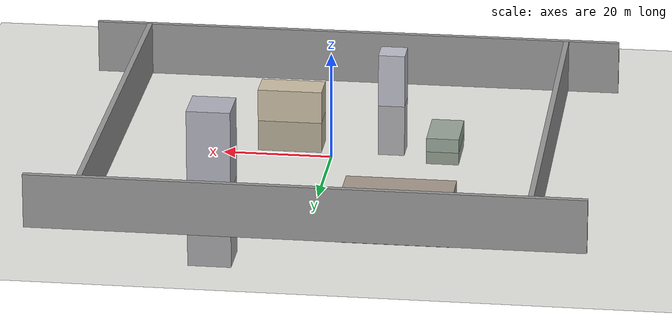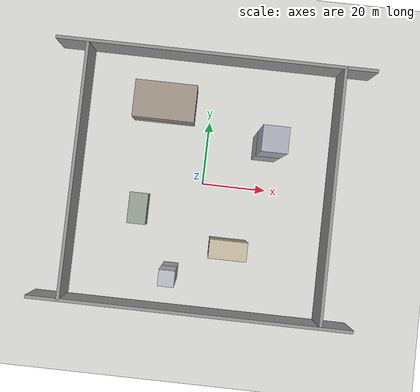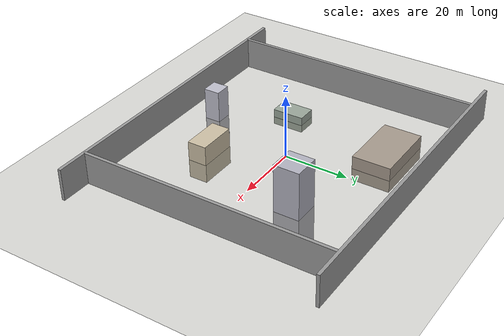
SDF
<?xml version="1.0" encoding="UTF-8"?>
<sdf version='1.9'>
  <world name="sentinel_urban">
    <physics type="ode">
      <max_step_size>0.004</max_step_size>
      <real_time_factor>1.0</real_time_factor>
      <real_time_update_rate>250</real_time_update_rate>
    </physics>
    <gravity>0 0 -9.8</gravity>
    <magnetic_field>6e-06 2.3e-05 -4.2e-05</magnetic_field>
    <atmosphere type="adiabatic"/>

    <!-- No world-level plugins — PX4 loads them via server.config at runtime -->

    <scene>
      <grid>false</grid>
      <ambient>0.4 0.4 0.4 1</ambient>
      <background>0.6 0.7 0.9 1</background>
      <shadows>true</shadows>
    </scene>

    <!-- Ground plane -->
    <model name="ground_plane">
      <static>true</static>
      <link name="link">
        <collision name="collision">
          <geometry><plane><normal>0 0 1</normal><size>1 1</size></plane></geometry>
          <surface><friction><ode/></friction><bounce/><contact/></surface>
        </collision>
        <visual name="visual">
          <geometry><plane><normal>0 0 1</normal><size>500 500</size></plane></geometry>
          <material>
            <ambient>0.5 0.5 0.45 1</ambient>
            <diffuse>0.5 0.5 0.45 1</diffuse>
            <specular>0.3 0.3 0.3 1</specular>
          </material>
        </visual>
        <pose>0 0 0 0 0 0</pose>
        <inertial>
          <pose>0 0 0 0 0 0</pose>
          <mass>1</mass>
          <inertia>
            <ixx>1</ixx><ixy>0</ixy><ixz>0</ixz>
            <iyy>1</iyy><iyz>0</iyz><izz>1</izz>
          </inertia>
        </inertial>
      </link>
      <pose>0 0 0 0 0 0</pose>
      <self_collide>false</self_collide>
    </model>

    <!-- Building 1: Tall office tower -->
    <model name="building_1">
      <static>true</static>
      <pose>20 15 0 0 0 0</pose>
      <link name="link">
        <collision name="collision">
          <geometry><box><size>8 8 30</size></box></geometry>
        </collision>
        <visual name="visual">
          <geometry><box><size>8 8 30</size></box></geometry>
          <material>
            <ambient>0.6 0.6 0.65 1</ambient>
            <diffuse>0.7 0.7 0.75 1</diffuse>
            <specular>0.9 0.9 0.95 1</specular>
          </material>
        </visual>
      </link>
    </model>

    <!-- Building 2: Wide warehouse -->
    <model name="building_2">
      <static>true</static>
      <pose>-15 25 0 0 0 0</pose>
      <link name="link">
        <collision name="collision">
          <geometry><box><size>20 12 8</size></box></geometry>
        </collision>
        <visual name="visual">
          <geometry><box><size>20 12 8</size></box></geometry>
          <material>
            <ambient>0.55 0.5 0.45 1</ambient>
            <diffuse>0.65 0.6 0.55 1</diffuse>
            <specular>0.3 0.3 0.3 1</specular>
          </material>
        </visual>
      </link>
    </model>

    <!-- Building 3: Residential block -->
    <model name="building_3">
      <static>true</static>
      <pose>10 -20 0 0 0 0</pose>
      <link name="link">
        <collision name="collision">
          <geometry><box><size>12 6 12</size></box></geometry>
        </collision>
        <visual name="visual">
          <geometry><box><size>12 6 12</size></box></geometry>
          <material>
            <ambient>0.7 0.65 0.55 1</ambient>
            <diffuse>0.8 0.75 0.65 1</diffuse>
            <specular>0.2 0.2 0.2 1</specular>
          </material>
        </visual>
      </link>
    </model>

    <!-- Building 4: Low structure -->
    <model name="building_4">
      <static>true</static>
      <pose>-20 -10 0 0 0 0</pose>
      <link name="link">
        <collision name="collision">
          <geometry><box><size>6 10 5</size></box></geometry>
        </collision>
        <visual name="visual">
          <geometry><box><size>6 10 5</size></box></geometry>
          <material>
            <ambient>0.5 0.55 0.5 1</ambient>
            <diffuse>0.6 0.65 0.6 1</diffuse>
            <specular>0.4 0.4 0.4 1</specular>
          </material>
        </visual>
      </link>
    </model>

    <!-- Building 5: Tower -->
    <model name="building_5">
      <static>true</static>
      <pose>-8 -30 0 0 0 0</pose>
      <link name="link">
        <collision name="collision">
          <geometry><box><size>5 5 20</size></box></geometry>
        </collision>
        <visual name="visual">
          <geometry><box><size>5 5 20</size></box></geometry>
          <material>
            <ambient>0.65 0.65 0.7 1</ambient>
            <diffuse>0.75 0.75 0.8 1</diffuse>
            <specular>0.8 0.8 0.85 1</specular>
          </material>
        </visual>
      </link>
    </model>

    <!-- Perimeter walls for enclosed test area -->
    <model name="wall_north">
      <static>true</static>
      <pose>0 40 5 0 0 0</pose>
      <link name="link">
        <collision name="collision">
          <geometry><box><size>100 1 10</size></box></geometry>
        </collision>
        <visual name="visual">
          <geometry><box><size>100 1 10</size></box></geometry>
          <material>
            <ambient>0.5 0.5 0.5 1</ambient>
            <diffuse>0.6 0.6 0.6 1</diffuse>
          </material>
        </visual>
      </link>
    </model>
    <model name="wall_south">
      <static>true</static>
      <pose>0 -40 5 0 0 0</pose>
      <link name="link">
        <collision name="collision">
          <geometry><box><size>100 1 10</size></box></geometry>
        </collision>
        <visual name="visual">
          <geometry><box><size>100 1 10</size></box></geometry>
          <material>
            <ambient>0.5 0.5 0.5 1</ambient>
            <diffuse>0.6 0.6 0.6 1</diffuse>
          </material>
        </visual>
      </link>
    </model>
    <model name="wall_east">
      <static>true</static>
      <pose>40 0 5 0 0 0</pose>
      <link name="link">
        <collision name="collision">
          <geometry><box><size>1 80 10</size></box></geometry>
        </collision>
        <visual name="visual">
          <geometry><box><size>1 80 10</size></box></geometry>
          <material>
            <ambient>0.5 0.5 0.5 1</ambient>
            <diffuse>0.6 0.6 0.6 1</diffuse>
          </material>
        </visual>
      </link>
    </model>
    <model name="wall_west">
      <static>true</static>
      <pose>-40 0 5 0 0 0</pose>
      <link name="link">
        <collision name="collision">
          <geometry><box><size>1 80 10</size></box></geometry>
        </collision>
        <visual name="visual">
          <geometry><box><size>1 80 10</size></box></geometry>
          <material>
            <ambient>0.5 0.5 0.5 1</ambient>
            <diffuse>0.6 0.6 0.6 1</diffuse>
          </material>
        </visual>
      </link>
    </model>

    <light name="sun" type="directional">
      <pose>0 0 500 0 0 0</pose>
      <cast_shadows>true</cast_shadows>
      <intensity>1</intensity>
      <direction>0.001 0.625 -0.78</direction>
      <diffuse>0.95 0.92 0.87 1</diffuse>
      <specular>0.4 0.4 0.4 1</specular>
      <attenuation>
        <range>2000</range>
        <linear>0</linear>
        <constant>1</constant>
        <quadratic>0</quadratic>
      </attenuation>
    </light>

    <spherical_coordinates>
      <surface_model>EARTH_WGS84</surface_model>
      <world_frame_orientation>ENU</world_frame_orientation>
      <latitude_deg>47.397971057728974</latitude_deg>
      <longitude_deg>8.546163739800146</longitude_deg>
      <elevation>0</elevation>
    </spherical_coordinates>
  </world>
</sdf>
